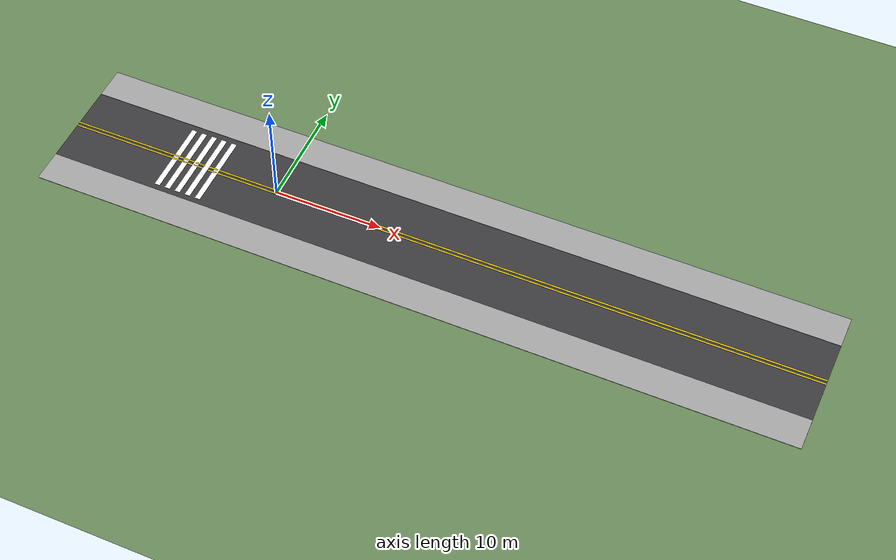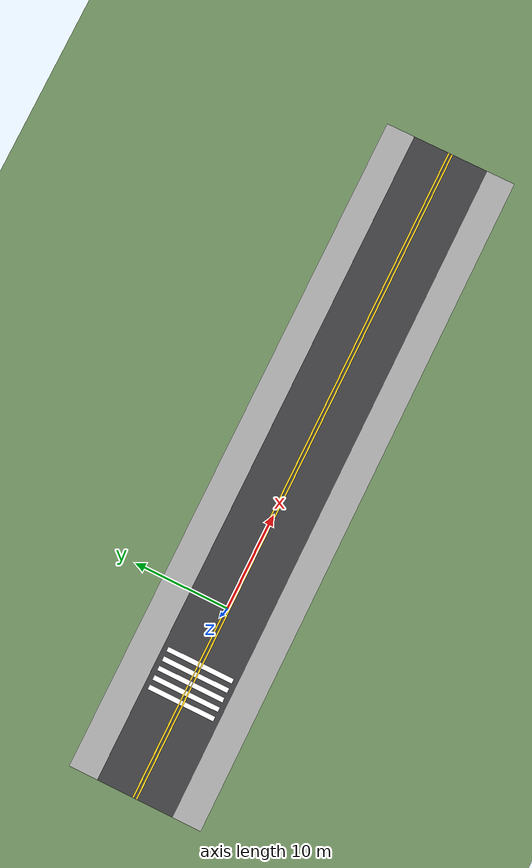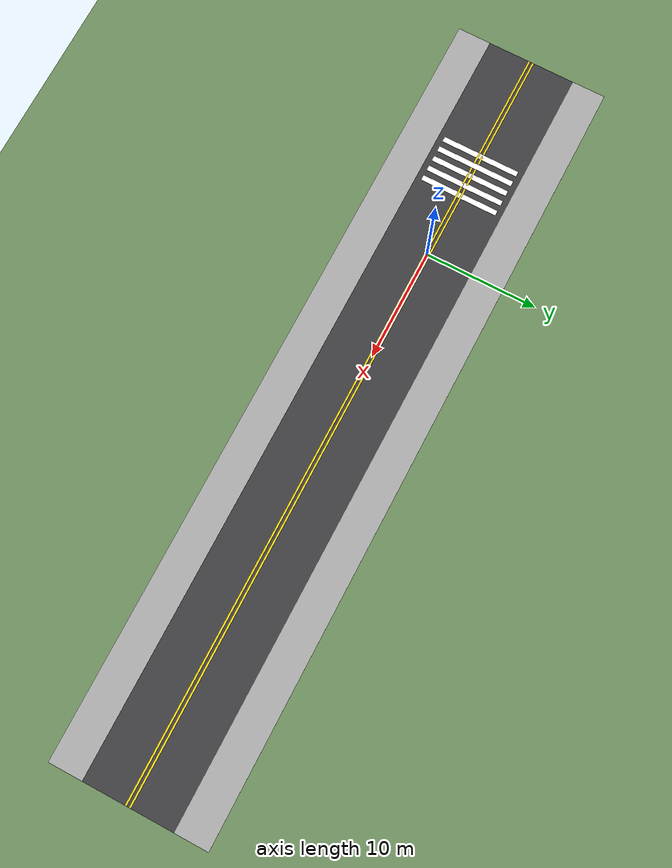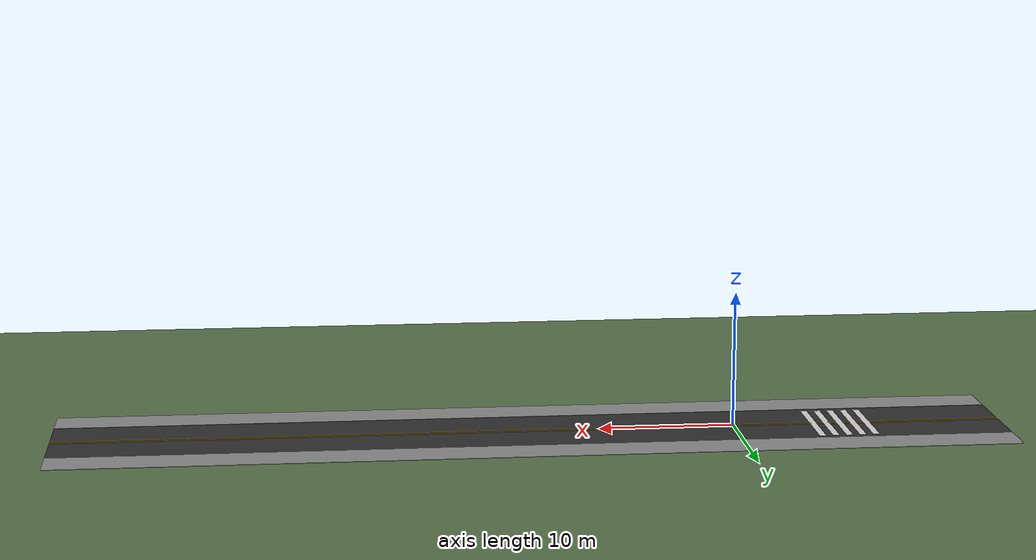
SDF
<sdf version="1.8">
 <world name="h1_world">
  <physics name="1ms" type="ignored">
   <max_step_size>0.001</max_step_size>
   <real_time_factor>1.0</real_time_factor>
  </physics>
  <plugin filename="gz-sim-physics-system" name="gz::sim::systems::Physics"/>
  <plugin filename="gz-sim-user-commands-system" name="gz::sim::systems::UserCommands"/>
  <plugin filename="gz-sim-scene-broadcaster-system" name="gz::sim::systems::SceneBroadcaster"/>
  <plugin filename="gz-sim-contact-system" name="gz::sim::systems::Contact"/>
  <plugin filename="gz-sim-imu-system" name="gz::sim::systems::Imu"/>
  <plugin filename="gz-sim-sensors-system" name="gz::sim::systems::Sensors">
   <render_engine>ogre</render_engine>
  </plugin>
  <scene><ambient>0.5 0.5 0.5 1</ambient><background>0.7 0.8 0.95 1</background></scene>
  <light type="directional" name="sun">
   <pose>0 0 10 0 0 0</pose>
   <diffuse>0.9 0.9 0.9 1</diffuse>
   <specular>0.2 0.2 0.2 1</specular>
   <direction>-0.5 0.3 -0.9</direction>
  </light>
  <model name="ground_plane">
   <static>true</static>
   <link name="link">
    <collision name="collision">
     <geometry><plane><normal>0 0 1</normal><size>200 200</size></plane></geometry>
     <surface><friction><ode><mu>100</mu><mu2>50</mu2></ode></friction></surface>
    </collision>
    <visual name="visual">
     <geometry><plane><normal>0 0 1</normal><size>200 200</size></plane></geometry>
     <material>
      <ambient>0.35 0.45 0.30 1</ambient>
      <diffuse>0.40 0.52 0.34 1</diffuse>
      <specular>0.05 0.05 0.05 1</specular>
     </material>
    </visual>
   </link>
  </model>
  <model name="road">
   <static>true</static>
   <link name="link">
    <visual name="asphalt">
     <pose>15 0 0.01 0 0 0</pose>
     <geometry><box><size>70 8 0.02</size></box></geometry>
     <material>
      <ambient>0.18 0.18 0.19 1</ambient>
      <diffuse>0.22 0.22 0.23 1</diffuse>
      <specular>0.05 0.05 0.05 1</specular>
     </material>
    </visual>
   </link>
  </model>
  <model name="center_line">
   <static>true</static>
   <link name="link">
    <visual name="line_a">
     <pose>15 0.18 0.021 0 0 0</pose>
     <geometry><box><size>70 0.15 0.005</size></box></geometry>
     <material><ambient>0.85 0.72 0.05 1</ambient><diffuse>0.95 0.80 0.07 1</diffuse></material>
    </visual>
    <visual name="line_b">
     <pose>15 -0.18 0.021 0 0 0</pose>
     <geometry><box><size>70 0.15 0.005</size></box></geometry>
     <material><ambient>0.85 0.72 0.05 1</ambient><diffuse>0.95 0.80 0.07 1</diffuse></material>
    </visual>
   </link>
  </model>
  <model name="sidewalk_left">
   <static>true</static>
   <link name="link">
    <visual name="visual">
     <pose>15 5.5 0.02 0 0 0</pose>
     <geometry><box><size>70 3 0.04</size></box></geometry>
     <material><ambient>0.55 0.55 0.55 1</ambient><diffuse>0.62 0.62 0.62 1</diffuse></material>
    </visual>
   </link>
  </model>
  <model name="sidewalk_right">
   <static>true</static>
   <link name="link">
    <visual name="visual">
     <pose>15 -5.5 0.02 0 0 0</pose>
     <geometry><box><size>70 3 0.04</size></box></geometry>
     <material><ambient>0.55 0.55 0.55 1</ambient><diffuse>0.62 0.62 0.62 1</diffuse></material>
    </visual>
   </link>
  </model>
  <model name="crosswalk">
   <static>true</static>
   <link name="link">
    <visual name="s1">
     <pose>-10.0 0 0.021 0 0 0</pose>
     <geometry><box><size>0.5 7 0.005</size></box></geometry>
     <material><ambient>0.9 0.9 0.9 1</ambient><diffuse>0.95 0.95 0.95 1</diffuse></material>
    </visual>
    <visual name="s2">
     <pose>-9.0 0 0.021 0 0 0</pose>
     <geometry><box><size>0.5 7 0.005</size></box></geometry>
     <material><ambient>0.9 0.9 0.9 1</ambient><diffuse>0.95 0.95 0.95 1</diffuse></material>
    </visual>
    <visual name="s3">
     <pose>-8.0 0 0.021 0 0 0</pose>
     <geometry><box><size>0.5 7 0.005</size></box></geometry>
     <material><ambient>0.9 0.9 0.9 1</ambient><diffuse>0.95 0.95 0.95 1</diffuse></material>
    </visual>
    <visual name="s4">
     <pose>-7.0 0 0.021 0 0 0</pose>
     <geometry><box><size>0.5 7 0.005</size></box></geometry>
     <material><ambient>0.9 0.9 0.9 1</ambient><diffuse>0.95 0.95 0.95 1</diffuse></material>
    </visual>
    <visual name="s5">
     <pose>-6.0 0 0.021 0 0 0</pose>
     <geometry><box><size>0.5 7 0.005</size></box></geometry>
     <material><ambient>0.9 0.9 0.9 1</ambient><diffuse>0.95 0.95 0.95 1</diffuse></material>
    </visual>
   </link>
  </model>
 </world>
</sdf>
